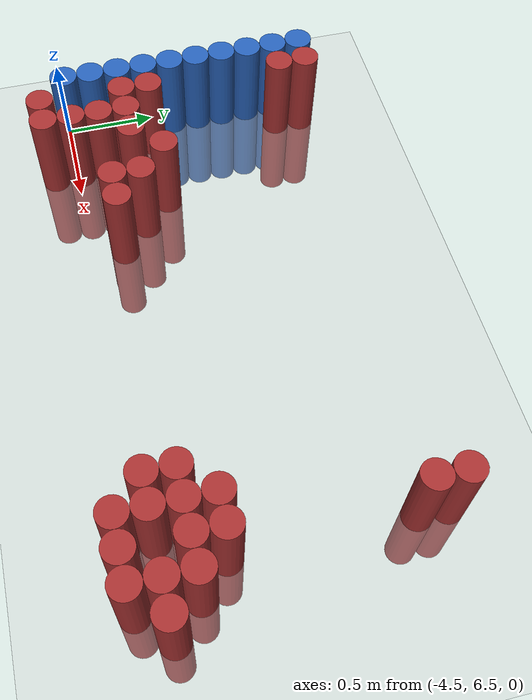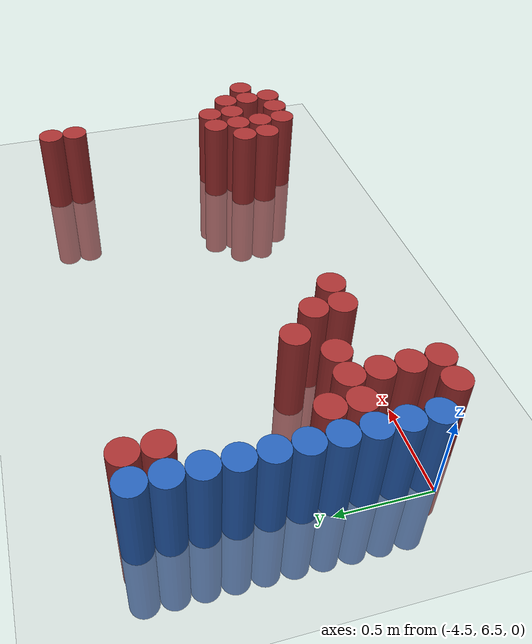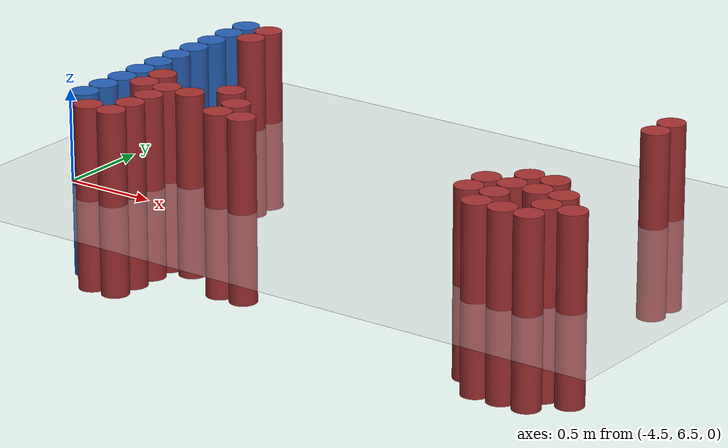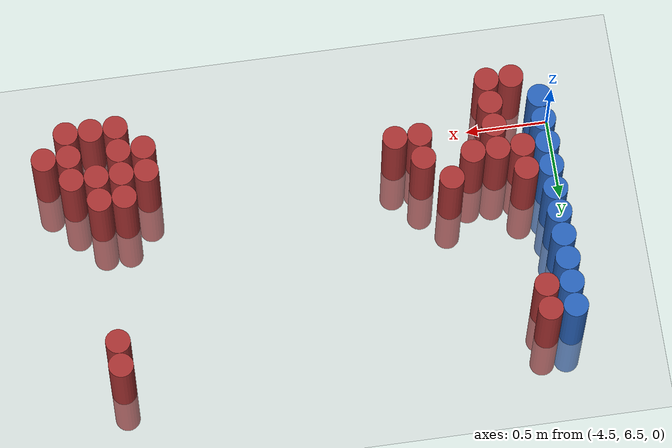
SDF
<sdf version="1.6">
 <world name="default">
  <model name="ground_plane">
   <static>1</static>
   <link name="link">
    <collision name="collision">
     <geometry><plane><normal>0 0 1</normal><size>100 100</size></plane></geometry>
     <surface><friction><ode><mu>100</mu><mu2>50</mu2></ode></friction></surface>
    </collision>
    <visual name="visual">
     <cast_shadows>0</cast_shadows>
     <geometry><plane><normal>0 0 1</normal><size>100 100</size></plane></geometry>
     <material>
      <script><uri>file://media/materials/scripts/gazebo.material</uri><name>Gazebo/Grey</name></script>
     </material>
    </visual>
   </link>
  </model>
  <model name="unit_cylinder_105">
   <static>1</static>
   <pose>-4.425000 6.525000 0.000000 0.000000 0.000000 0.000000</pose>
   <link name="link">
    <inertial>
     <mass>1</mass>
     <inertia><ixx>0.145833</ixx><ixy>0</ixy><ixz>0</ixz><iyy>0.145833</iyy><iyz>0</iyz><izz>0.125</izz></inertia>
    </inertial>
    <collision name="collision">
     <geometry><cylinder><radius>0.075000</radius><length>1</length></cylinder></geometry>
    </collision>
    <visual name="visual">
     <geometry><cylinder><radius>0.075000</radius><length>1</length></cylinder></geometry>
     <material>
      <ambient>0.152000 0.379000 0.720000 1</ambient>
      <diffuse>0.152000 0.379000 0.720000 1</diffuse>
     </material>
     <material>
      <script><name>Gazebo/Grey</name><uri>file://media/materials/scripts/gazebo.material</uri></script>
     </material>
    </visual>
    <sensor name="sensor_contact" type="contact"><contact><collision>collision</collision></contact></sensor>
   </link>
   <plugin filename="gz-sim-touchplugin-system" name="gz::sim::systems::TouchPlugin">
    <target>robot</target>
    <namespace>robot</namespace>
    <time>0.001</time>
    <enabled>true</enabled>
   </plugin>
  </model>
  <model name="unit_cylinder_106">
   <static>1</static>
   <pose>-4.425000 6.675000 0.000000 0.000000 0.000000 0.000000</pose>
   <link name="link">
    <inertial>
     <mass>1</mass>
     <inertia><ixx>0.145833</ixx><ixy>0</ixy><ixz>0</ixz><iyy>0.145833</iyy><iyz>0</iyz><izz>0.125</izz></inertia>
    </inertial>
    <collision name="collision">
     <geometry><cylinder><radius>0.075000</radius><length>1</length></cylinder></geometry>
    </collision>
    <visual name="visual">
     <geometry><cylinder><radius>0.075000</radius><length>1</length></cylinder></geometry>
     <material>
      <ambient>0.152000 0.379000 0.720000 1</ambient>
      <diffuse>0.152000 0.379000 0.720000 1</diffuse>
     </material>
     <material>
      <script><name>Gazebo/Grey</name><uri>file://media/materials/scripts/gazebo.material</uri></script>
     </material>
    </visual>
    <sensor name="sensor_contact" type="contact"><contact><collision>collision</collision></contact></sensor>
   </link>
   <plugin filename="gz-sim-touchplugin-system" name="gz::sim::systems::TouchPlugin">
    <target>robot</target>
    <namespace>robot</namespace>
    <time>0.001</time>
    <enabled>true</enabled>
   </plugin>
  </model>
  <model name="unit_cylinder_107">
   <static>1</static>
   <pose>-4.425000 6.825000 0.000000 0.000000 0.000000 0.000000</pose>
   <link name="link">
    <inertial>
     <mass>1</mass>
     <inertia><ixx>0.145833</ixx><ixy>0</ixy><ixz>0</ixz><iyy>0.145833</iyy><iyz>0</iyz><izz>0.125</izz></inertia>
    </inertial>
    <collision name="collision">
     <geometry><cylinder><radius>0.075000</radius><length>1</length></cylinder></geometry>
    </collision>
    <visual name="visual">
     <geometry><cylinder><radius>0.075000</radius><length>1</length></cylinder></geometry>
     <material>
      <ambient>0.152000 0.379000 0.720000 1</ambient>
      <diffuse>0.152000 0.379000 0.720000 1</diffuse>
     </material>
     <material>
      <script><name>Gazebo/Grey</name><uri>file://media/materials/scripts/gazebo.material</uri></script>
     </material>
    </visual>
    <sensor name="sensor_contact" type="contact"><contact><collision>collision</collision></contact></sensor>
   </link>
   <plugin filename="gz-sim-touchplugin-system" name="gz::sim::systems::TouchPlugin">
    <target>robot</target>
    <namespace>robot</namespace>
    <time>0.001</time>
    <enabled>true</enabled>
   </plugin>
  </model>
  <model name="unit_cylinder_108">
   <static>1</static>
   <pose>-4.425000 6.975000 0.000000 0.000000 0.000000 0.000000</pose>
   <link name="link">
    <inertial>
     <mass>1</mass>
     <inertia><ixx>0.145833</ixx><ixy>0</ixy><ixz>0</ixz><iyy>0.145833</iyy><iyz>0</iyz><izz>0.125</izz></inertia>
    </inertial>
    <collision name="collision">
     <geometry><cylinder><radius>0.075000</radius><length>1</length></cylinder></geometry>
    </collision>
    <visual name="visual">
     <geometry><cylinder><radius>0.075000</radius><length>1</length></cylinder></geometry>
     <material>
      <ambient>0.152000 0.379000 0.720000 1</ambient>
      <diffuse>0.152000 0.379000 0.720000 1</diffuse>
     </material>
     <material>
      <script><name>Gazebo/Grey</name><uri>file://media/materials/scripts/gazebo.material</uri></script>
     </material>
    </visual>
    <sensor name="sensor_contact" type="contact"><contact><collision>collision</collision></contact></sensor>
   </link>
   <plugin filename="gz-sim-touchplugin-system" name="gz::sim::systems::TouchPlugin">
    <target>robot</target>
    <namespace>robot</namespace>
    <time>0.001</time>
    <enabled>true</enabled>
   </plugin>
  </model>
  <model name="unit_cylinder_109">
   <static>1</static>
   <pose>-4.425000 7.125000 0.000000 0.000000 0.000000 0.000000</pose>
   <link name="link">
    <inertial>
     <mass>1</mass>
     <inertia><ixx>0.145833</ixx><ixy>0</ixy><ixz>0</ixz><iyy>0.145833</iyy><iyz>0</iyz><izz>0.125</izz></inertia>
    </inertial>
    <collision name="collision">
     <geometry><cylinder><radius>0.075000</radius><length>1</length></cylinder></geometry>
    </collision>
    <visual name="visual">
     <geometry><cylinder><radius>0.075000</radius><length>1</length></cylinder></geometry>
     <material>
      <ambient>0.152000 0.379000 0.720000 1</ambient>
      <diffuse>0.152000 0.379000 0.720000 1</diffuse>
     </material>
     <material>
      <script><name>Gazebo/Grey</name><uri>file://media/materials/scripts/gazebo.material</uri></script>
     </material>
    </visual>
    <sensor name="sensor_contact" type="contact"><contact><collision>collision</collision></contact></sensor>
   </link>
   <plugin filename="gz-sim-touchplugin-system" name="gz::sim::systems::TouchPlugin">
    <target>robot</target>
    <namespace>robot</namespace>
    <time>0.001</time>
    <enabled>true</enabled>
   </plugin>
  </model>
  <model name="unit_cylinder_110">
   <static>1</static>
   <pose>-4.425000 7.275000 0.000000 0.000000 0.000000 0.000000</pose>
   <link name="link">
    <inertial>
     <mass>1</mass>
     <inertia><ixx>0.145833</ixx><ixy>0</ixy><ixz>0</ixz><iyy>0.145833</iyy><iyz>0</iyz><izz>0.125</izz></inertia>
    </inertial>
    <collision name="collision">
     <geometry><cylinder><radius>0.075000</radius><length>1</length></cylinder></geometry>
    </collision>
    <visual name="visual">
     <geometry><cylinder><radius>0.075000</radius><length>1</length></cylinder></geometry>
     <material>
      <ambient>0.152000 0.379000 0.720000 1</ambient>
      <diffuse>0.152000 0.379000 0.720000 1</diffuse>
     </material>
     <material>
      <script><name>Gazebo/Grey</name><uri>file://media/materials/scripts/gazebo.material</uri></script>
     </material>
    </visual>
    <sensor name="sensor_contact" type="contact"><contact><collision>collision</collision></contact></sensor>
   </link>
   <plugin filename="gz-sim-touchplugin-system" name="gz::sim::systems::TouchPlugin">
    <target>robot</target>
    <namespace>robot</namespace>
    <time>0.001</time>
    <enabled>true</enabled>
   </plugin>
  </model>
  <model name="unit_cylinder_111">
   <static>1</static>
   <pose>-4.425000 7.425000 0.000000 0.000000 0.000000 0.000000</pose>
   <link name="link">
    <inertial>
     <mass>1</mass>
     <inertia><ixx>0.145833</ixx><ixy>0</ixy><ixz>0</ixz><iyy>0.145833</iyy><iyz>0</iyz><izz>0.125</izz></inertia>
    </inertial>
    <collision name="collision">
     <geometry><cylinder><radius>0.075000</radius><length>1</length></cylinder></geometry>
    </collision>
    <visual name="visual">
     <geometry><cylinder><radius>0.075000</radius><length>1</length></cylinder></geometry>
     <material>
      <ambient>0.152000 0.379000 0.720000 1</ambient>
      <diffuse>0.152000 0.379000 0.720000 1</diffuse>
     </material>
     <material>
      <script><name>Gazebo/Grey</name><uri>file://media/materials/scripts/gazebo.material</uri></script>
     </material>
    </visual>
    <sensor name="sensor_contact" type="contact"><contact><collision>collision</collision></contact></sensor>
   </link>
   <plugin filename="gz-sim-touchplugin-system" name="gz::sim::systems::TouchPlugin">
    <target>robot</target>
    <namespace>robot</namespace>
    <time>0.001</time>
    <enabled>true</enabled>
   </plugin>
  </model>
  <model name="unit_cylinder_112">
   <static>1</static>
   <pose>-4.425000 7.575000 0.000000 0.000000 0.000000 0.000000</pose>
   <link name="link">
    <inertial>
     <mass>1</mass>
     <inertia><ixx>0.145833</ixx><ixy>0</ixy><ixz>0</ixz><iyy>0.145833</iyy><iyz>0</iyz><izz>0.125</izz></inertia>
    </inertial>
    <collision name="collision">
     <geometry><cylinder><radius>0.075000</radius><length>1</length></cylinder></geometry>
    </collision>
    <visual name="visual">
     <geometry><cylinder><radius>0.075000</radius><length>1</length></cylinder></geometry>
     <material>
      <ambient>0.152000 0.379000 0.720000 1</ambient>
      <diffuse>0.152000 0.379000 0.720000 1</diffuse>
     </material>
     <material>
      <script><name>Gazebo/Grey</name><uri>file://media/materials/scripts/gazebo.material</uri></script>
     </material>
    </visual>
    <sensor name="sensor_contact" type="contact"><contact><collision>collision</collision></contact></sensor>
   </link>
   <plugin filename="gz-sim-touchplugin-system" name="gz::sim::systems::TouchPlugin">
    <target>robot</target>
    <namespace>robot</namespace>
    <time>0.001</time>
    <enabled>true</enabled>
   </plugin>
  </model>
  <model name="unit_cylinder_113">
   <static>1</static>
   <pose>-4.425000 7.725000 0.000000 0.000000 0.000000 0.000000</pose>
   <link name="link">
    <inertial>
     <mass>1</mass>
     <inertia><ixx>0.145833</ixx><ixy>0</ixy><ixz>0</ixz><iyy>0.145833</iyy><iyz>0</iyz><izz>0.125</izz></inertia>
    </inertial>
    <collision name="collision">
     <geometry><cylinder><radius>0.075000</radius><length>1</length></cylinder></geometry>
    </collision>
    <visual name="visual">
     <geometry><cylinder><radius>0.075000</radius><length>1</length></cylinder></geometry>
     <material>
      <ambient>0.152000 0.379000 0.720000 1</ambient>
      <diffuse>0.152000 0.379000 0.720000 1</diffuse>
     </material>
     <material>
      <script><name>Gazebo/Grey</name><uri>file://media/materials/scripts/gazebo.material</uri></script>
     </material>
    </visual>
    <sensor name="sensor_contact" type="contact"><contact><collision>collision</collision></contact></sensor>
   </link>
   <plugin filename="gz-sim-touchplugin-system" name="gz::sim::systems::TouchPlugin">
    <target>robot</target>
    <namespace>robot</namespace>
    <time>0.001</time>
    <enabled>true</enabled>
   </plugin>
  </model>
  <model name="unit_cylinder_114">
   <static>1</static>
   <pose>-4.425000 7.875000 0.000000 0.000000 0.000000 0.000000</pose>
   <link name="link">
    <inertial>
     <mass>1</mass>
     <inertia><ixx>0.145833</ixx><ixy>0</ixy><ixz>0</ixz><iyy>0.145833</iyy><iyz>0</iyz><izz>0.125</izz></inertia>
    </inertial>
    <collision name="collision">
     <geometry><cylinder><radius>0.075000</radius><length>1</length></cylinder></geometry>
    </collision>
    <visual name="visual">
     <geometry><cylinder><radius>0.075000</radius><length>1</length></cylinder></geometry>
     <material>
      <ambient>0.152000 0.379000 0.720000 1</ambient>
      <diffuse>0.152000 0.379000 0.720000 1</diffuse>
     </material>
     <material>
      <script><name>Gazebo/Grey</name><uri>file://media/materials/scripts/gazebo.material</uri></script>
     </material>
    </visual>
    <sensor name="sensor_contact" type="contact"><contact><collision>collision</collision></contact></sensor>
   </link>
   <plugin filename="gz-sim-touchplugin-system" name="gz::sim::systems::TouchPlugin">
    <target>robot</target>
    <namespace>robot</namespace>
    <time>0.001</time>
    <enabled>true</enabled>
   </plugin>
  </model>
  <model name="unit_cylinder_131">
   <static>1</static>
   <pose>-4.275000 6.375000 0.000000 0.000000 0.000000 0.000000</pose>
   <link name="link">
    <inertial>
     <mass>1</mass>
     <inertia><ixx>0.145833</ixx><ixy>0</ixy><ixz>0</ixz><iyy>0.145833</iyy><iyz>0</iyz><izz>0.125</izz></inertia>
    </inertial>
    <collision name="collision">
     <geometry><cylinder><radius>0.075000</radius><length>1</length></cylinder></geometry>
    </collision>
    <visual name="visual">
     <geometry><cylinder><radius>0.075000</radius><length>1</length></cylinder></geometry>
     <material>
      <ambient>0.648000 0.192000 0.192000 1</ambient>
      <diffuse>0.648000 0.192000 0.192000 1</diffuse>
     </material>
     <material>
      <script><name>Gazebo/Grey</name><uri>file://media/materials/scripts/gazebo.material</uri></script>
     </material>
    </visual>
    <sensor name="sensor_contact" type="contact"><contact><collision>collision</collision></contact></sensor>
   </link>
   <plugin filename="gz-sim-touchplugin-system" name="gz::sim::systems::TouchPlugin">
    <target>robot</target>
    <namespace>robot</namespace>
    <time>0.001</time>
    <enabled>true</enabled>
   </plugin>
  </model>
  <model name="unit_cylinder_132">
   <static>1</static>
   <pose>-4.275000 6.825000 0.000000 0.000000 0.000000 0.000000</pose>
   <link name="link">
    <inertial>
     <mass>1</mass>
     <inertia><ixx>0.145833</ixx><ixy>0</ixy><ixz>0</ixz><iyy>0.145833</iyy><iyz>0</iyz><izz>0.125</izz></inertia>
    </inertial>
    <collision name="collision">
     <geometry><cylinder><radius>0.075000</radius><length>1</length></cylinder></geometry>
    </collision>
    <visual name="visual">
     <geometry><cylinder><radius>0.075000</radius><length>1</length></cylinder></geometry>
     <material>
      <ambient>0.648000 0.192000 0.192000 1</ambient>
      <diffuse>0.648000 0.192000 0.192000 1</diffuse>
     </material>
     <material>
      <script><name>Gazebo/Grey</name><uri>file://media/materials/scripts/gazebo.material</uri></script>
     </material>
    </visual>
    <sensor name="sensor_contact" type="contact"><contact><collision>collision</collision></contact></sensor>
   </link>
   <plugin filename="gz-sim-touchplugin-system" name="gz::sim::systems::TouchPlugin">
    <target>robot</target>
    <namespace>robot</namespace>
    <time>0.001</time>
    <enabled>true</enabled>
   </plugin>
  </model>
  <model name="unit_cylinder_133">
   <static>1</static>
   <pose>-4.275000 6.975000 0.000000 0.000000 0.000000 0.000000</pose>
   <link name="link">
    <inertial>
     <mass>1</mass>
     <inertia><ixx>0.145833</ixx><ixy>0</ixy><ixz>0</ixz><iyy>0.145833</iyy><iyz>0</iyz><izz>0.125</izz></inertia>
    </inertial>
    <collision name="collision">
     <geometry><cylinder><radius>0.075000</radius><length>1</length></cylinder></geometry>
    </collision>
    <visual name="visual">
     <geometry><cylinder><radius>0.075000</radius><length>1</length></cylinder></geometry>
     <material>
      <ambient>0.648000 0.192000 0.192000 1</ambient>
      <diffuse>0.648000 0.192000 0.192000 1</diffuse>
     </material>
     <material>
      <script><name>Gazebo/Grey</name><uri>file://media/materials/scripts/gazebo.material</uri></script>
     </material>
    </visual>
    <sensor name="sensor_contact" type="contact"><contact><collision>collision</collision></contact></sensor>
   </link>
   <plugin filename="gz-sim-touchplugin-system" name="gz::sim::systems::TouchPlugin">
    <target>robot</target>
    <namespace>robot</namespace>
    <time>0.001</time>
    <enabled>true</enabled>
   </plugin>
  </model>
  <model name="unit_cylinder_134">
   <static>1</static>
   <pose>-4.275000 7.725000 0.000000 0.000000 0.000000 0.000000</pose>
   <link name="link">
    <inertial>
     <mass>1</mass>
     <inertia><ixx>0.145833</ixx><ixy>0</ixy><ixz>0</ixz><iyy>0.145833</iyy><iyz>0</iyz><izz>0.125</izz></inertia>
    </inertial>
    <collision name="collision">
     <geometry><cylinder><radius>0.075000</radius><length>1</length></cylinder></geometry>
    </collision>
    <visual name="visual">
     <geometry><cylinder><radius>0.075000</radius><length>1</length></cylinder></geometry>
     <material>
      <ambient>0.648000 0.192000 0.192000 1</ambient>
      <diffuse>0.648000 0.192000 0.192000 1</diffuse>
     </material>
     <material>
      <script><name>Gazebo/Grey</name><uri>file://media/materials/scripts/gazebo.material</uri></script>
     </material>
    </visual>
    <sensor name="sensor_contact" type="contact"><contact><collision>collision</collision></contact></sensor>
   </link>
   <plugin filename="gz-sim-touchplugin-system" name="gz::sim::systems::TouchPlugin">
    <target>robot</target>
    <namespace>robot</namespace>
    <time>0.001</time>
    <enabled>true</enabled>
   </plugin>
  </model>
  <model name="unit_cylinder_135">
   <static>1</static>
   <pose>-4.275000 7.875000 0.000000 0.000000 0.000000 0.000000</pose>
   <link name="link">
    <inertial>
     <mass>1</mass>
     <inertia><ixx>0.145833</ixx><ixy>0</ixy><ixz>0</ixz><iyy>0.145833</iyy><iyz>0</iyz><izz>0.125</izz></inertia>
    </inertial>
    <collision name="collision">
     <geometry><cylinder><radius>0.075000</radius><length>1</length></cylinder></geometry>
    </collision>
    <visual name="visual">
     <geometry><cylinder><radius>0.075000</radius><length>1</length></cylinder></geometry>
     <material>
      <ambient>0.648000 0.192000 0.192000 1</ambient>
      <diffuse>0.648000 0.192000 0.192000 1</diffuse>
     </material>
     <material>
      <script><name>Gazebo/Grey</name><uri>file://media/materials/scripts/gazebo.material</uri></script>
     </material>
    </visual>
    <sensor name="sensor_contact" type="contact"><contact><collision>collision</collision></contact></sensor>
   </link>
   <plugin filename="gz-sim-touchplugin-system" name="gz::sim::systems::TouchPlugin">
    <target>robot</target>
    <namespace>robot</namespace>
    <time>0.001</time>
    <enabled>true</enabled>
   </plugin>
  </model>
  <model name="unit_cylinder_146">
   <static>1</static>
   <pose>-4.125000 6.375000 0.000000 0.000000 0.000000 0.000000</pose>
   <link name="link">
    <inertial>
     <mass>1</mass>
     <inertia><ixx>0.145833</ixx><ixy>0</ixy><ixz>0</ixz><iyy>0.145833</iyy><iyz>0</iyz><izz>0.125</izz></inertia>
    </inertial>
    <collision name="collision">
     <geometry><cylinder><radius>0.075000</radius><length>1</length></cylinder></geometry>
    </collision>
    <visual name="visual">
     <geometry><cylinder><radius>0.075000</radius><length>1</length></cylinder></geometry>
     <material>
      <ambient>0.648000 0.192000 0.192000 1</ambient>
      <diffuse>0.648000 0.192000 0.192000 1</diffuse>
     </material>
     <material>
      <script><name>Gazebo/Grey</name><uri>file://media/materials/scripts/gazebo.material</uri></script>
     </material>
    </visual>
    <sensor name="sensor_contact" type="contact"><contact><collision>collision</collision></contact></sensor>
   </link>
   <plugin filename="gz-sim-touchplugin-system" name="gz::sim::systems::TouchPlugin">
    <target>robot</target>
    <namespace>robot</namespace>
    <time>0.001</time>
    <enabled>true</enabled>
   </plugin>
  </model>
  <model name="unit_cylinder_147">
   <static>1</static>
   <pose>-4.125000 6.525000 0.000000 0.000000 0.000000 0.000000</pose>
   <link name="link">
    <inertial>
     <mass>1</mass>
     <inertia><ixx>0.145833</ixx><ixy>0</ixy><ixz>0</ixz><iyy>0.145833</iyy><iyz>0</iyz><izz>0.125</izz></inertia>
    </inertial>
    <collision name="collision">
     <geometry><cylinder><radius>0.075000</radius><length>1</length></cylinder></geometry>
    </collision>
    <visual name="visual">
     <geometry><cylinder><radius>0.075000</radius><length>1</length></cylinder></geometry>
     <material>
      <ambient>0.648000 0.192000 0.192000 1</ambient>
      <diffuse>0.648000 0.192000 0.192000 1</diffuse>
     </material>
     <material>
      <script><name>Gazebo/Grey</name><uri>file://media/materials/scripts/gazebo.material</uri></script>
     </material>
    </visual>
    <sensor name="sensor_contact" type="contact"><contact><collision>collision</collision></contact></sensor>
   </link>
   <plugin filename="gz-sim-touchplugin-system" name="gz::sim::systems::TouchPlugin">
    <target>robot</target>
    <namespace>robot</namespace>
    <time>0.001</time>
    <enabled>true</enabled>
   </plugin>
  </model>
  <model name="unit_cylinder_148">
   <static>1</static>
   <pose>-4.125000 6.675000 0.000000 0.000000 0.000000 0.000000</pose>
   <link name="link">
    <inertial>
     <mass>1</mass>
     <inertia><ixx>0.145833</ixx><ixy>0</ixy><ixz>0</ixz><iyy>0.145833</iyy><iyz>0</iyz><izz>0.125</izz></inertia>
    </inertial>
    <collision name="collision">
     <geometry><cylinder><radius>0.075000</radius><length>1</length></cylinder></geometry>
    </collision>
    <visual name="visual">
     <geometry><cylinder><radius>0.075000</radius><length>1</length></cylinder></geometry>
     <material>
      <ambient>0.648000 0.192000 0.192000 1</ambient>
      <diffuse>0.648000 0.192000 0.192000 1</diffuse>
     </material>
     <material>
      <script><name>Gazebo/Grey</name><uri>file://media/materials/scripts/gazebo.material</uri></script>
     </material>
    </visual>
    <sensor name="sensor_contact" type="contact"><contact><collision>collision</collision></contact></sensor>
   </link>
   <plugin filename="gz-sim-touchplugin-system" name="gz::sim::systems::TouchPlugin">
    <target>robot</target>
    <namespace>robot</namespace>
    <time>0.001</time>
    <enabled>true</enabled>
   </plugin>
  </model>
  <model name="unit_cylinder_149">
   <static>1</static>
   <pose>-4.125000 6.825000 0.000000 0.000000 0.000000 0.000000</pose>
   <link name="link">
    <inertial>
     <mass>1</mass>
     <inertia><ixx>0.145833</ixx><ixy>0</ixy><ixz>0</ixz><iyy>0.145833</iyy><iyz>0</iyz><izz>0.125</izz></inertia>
    </inertial>
    <collision name="collision">
     <geometry><cylinder><radius>0.075000</radius><length>1</length></cylinder></geometry>
    </collision>
    <visual name="visual">
     <geometry><cylinder><radius>0.075000</radius><length>1</length></cylinder></geometry>
     <material>
      <ambient>0.648000 0.192000 0.192000 1</ambient>
      <diffuse>0.648000 0.192000 0.192000 1</diffuse>
     </material>
     <material>
      <script><name>Gazebo/Grey</name><uri>file://media/materials/scripts/gazebo.material</uri></script>
     </material>
    </visual>
    <sensor name="sensor_contact" type="contact"><contact><collision>collision</collision></contact></sensor>
   </link>
   <plugin filename="gz-sim-touchplugin-system" name="gz::sim::systems::TouchPlugin">
    <target>robot</target>
    <namespace>robot</namespace>
    <time>0.001</time>
    <enabled>true</enabled>
   </plugin>
  </model>
  <model name="unit_cylinder_157">
   <static>1</static>
   <pose>-3.975000 6.825000 0.000000 0.000000 0.000000 0.000000</pose>
   <link name="link">
    <inertial>
     <mass>1</mass>
     <inertia><ixx>0.145833</ixx><ixy>0</ixy><ixz>0</ixz><iyy>0.145833</iyy><iyz>0</iyz><izz>0.125</izz></inertia>
    </inertial>
    <collision name="collision">
     <geometry><cylinder><radius>0.075000</radius><length>1</length></cylinder></geometry>
    </collision>
    <visual name="visual">
     <geometry><cylinder><radius>0.075000</radius><length>1</length></cylinder></geometry>
     <material>
      <ambient>0.648000 0.192000 0.192000 1</ambient>
      <diffuse>0.648000 0.192000 0.192000 1</diffuse>
     </material>
     <material>
      <script><name>Gazebo/Grey</name><uri>file://media/materials/scripts/gazebo.material</uri></script>
     </material>
    </visual>
    <sensor name="sensor_contact" type="contact"><contact><collision>collision</collision></contact></sensor>
   </link>
   <plugin filename="gz-sim-touchplugin-system" name="gz::sim::systems::TouchPlugin">
    <target>robot</target>
    <namespace>robot</namespace>
    <time>0.001</time>
    <enabled>true</enabled>
   </plugin>
  </model>
  <model name="unit_cylinder_162">
   <static>1</static>
   <pose>-3.825000 6.975000 0.000000 0.000000 0.000000 0.000000</pose>
   <link name="link">
    <inertial>
     <mass>1</mass>
     <inertia><ixx>0.145833</ixx><ixy>0</ixy><ixz>0</ixz><iyy>0.145833</iyy><iyz>0</iyz><izz>0.125</izz></inertia>
    </inertial>
    <collision name="collision">
     <geometry><cylinder><radius>0.075000</radius><length>1</length></cylinder></geometry>
    </collision>
    <visual name="visual">
     <geometry><cylinder><radius>0.075000</radius><length>1</length></cylinder></geometry>
     <material>
      <ambient>0.648000 0.192000 0.192000 1</ambient>
      <diffuse>0.648000 0.192000 0.192000 1</diffuse>
     </material>
     <material>
      <script><name>Gazebo/Grey</name><uri>file://media/materials/scripts/gazebo.material</uri></script>
     </material>
    </visual>
    <sensor name="sensor_contact" type="contact"><contact><collision>collision</collision></contact></sensor>
   </link>
   <plugin filename="gz-sim-touchplugin-system" name="gz::sim::systems::TouchPlugin">
    <target>robot</target>
    <namespace>robot</namespace>
    <time>0.001</time>
    <enabled>true</enabled>
   </plugin>
  </model>
  <model name="unit_cylinder_163">
   <static>1</static>
   <pose>-3.675000 6.675000 0.000000 0.000000 0.000000 0.000000</pose>
   <link name="link">
    <inertial>
     <mass>1</mass>
     <inertia><ixx>0.145833</ixx><ixy>0</ixy><ixz>0</ixz><iyy>0.145833</iyy><iyz>0</iyz><izz>0.125</izz></inertia>
    </inertial>
    <collision name="collision">
     <geometry><cylinder><radius>0.075000</radius><length>1</length></cylinder></geometry>
    </collision>
    <visual name="visual">
     <geometry><cylinder><radius>0.075000</radius><length>1</length></cylinder></geometry>
     <material>
      <ambient>0.648000 0.192000 0.192000 1</ambient>
      <diffuse>0.648000 0.192000 0.192000 1</diffuse>
     </material>
     <material>
      <script><name>Gazebo/Grey</name><uri>file://media/materials/scripts/gazebo.material</uri></script>
     </material>
    </visual>
    <sensor name="sensor_contact" type="contact"><contact><collision>collision</collision></contact></sensor>
   </link>
   <plugin filename="gz-sim-touchplugin-system" name="gz::sim::systems::TouchPlugin">
    <target>robot</target>
    <namespace>robot</namespace>
    <time>0.001</time>
    <enabled>true</enabled>
   </plugin>
  </model>
  <model name="unit_cylinder_164">
   <static>1</static>
   <pose>-3.675000 6.825000 0.000000 0.000000 0.000000 0.000000</pose>
   <link name="link">
    <inertial>
     <mass>1</mass>
     <inertia><ixx>0.145833</ixx><ixy>0</ixy><ixz>0</ixz><iyy>0.145833</iyy><iyz>0</iyz><izz>0.125</izz></inertia>
    </inertial>
    <collision name="collision">
     <geometry><cylinder><radius>0.075000</radius><length>1</length></cylinder></geometry>
    </collision>
    <visual name="visual">
     <geometry><cylinder><radius>0.075000</radius><length>1</length></cylinder></geometry>
     <material>
      <ambient>0.648000 0.192000 0.192000 1</ambient>
      <diffuse>0.648000 0.192000 0.192000 1</diffuse>
     </material>
     <material>
      <script><name>Gazebo/Grey</name><uri>file://media/materials/scripts/gazebo.material</uri></script>
     </material>
    </visual>
    <sensor name="sensor_contact" type="contact"><contact><collision>collision</collision></contact></sensor>
   </link>
   <plugin filename="gz-sim-touchplugin-system" name="gz::sim::systems::TouchPlugin">
    <target>robot</target>
    <namespace>robot</namespace>
    <time>0.001</time>
    <enabled>true</enabled>
   </plugin>
  </model>
  <model name="unit_cylinder_165">
   <static>1</static>
   <pose>-3.525000 6.675000 0.000000 0.000000 0.000000 0.000000</pose>
   <link name="link">
    <inertial>
     <mass>1</mass>
     <inertia><ixx>0.145833</ixx><ixy>0</ixy><ixz>0</ixz><iyy>0.145833</iyy><iyz>0</iyz><izz>0.125</izz></inertia>
    </inertial>
    <collision name="collision">
     <geometry><cylinder><radius>0.075000</radius><length>1</length></cylinder></geometry>
    </collision>
    <visual name="visual">
     <geometry><cylinder><radius>0.075000</radius><length>1</length></cylinder></geometry>
     <material>
      <ambient>0.648000 0.192000 0.192000 1</ambient>
      <diffuse>0.648000 0.192000 0.192000 1</diffuse>
     </material>
     <material>
      <script><name>Gazebo/Grey</name><uri>file://media/materials/scripts/gazebo.material</uri></script>
     </material>
    </visual>
    <sensor name="sensor_contact" type="contact"><contact><collision>collision</collision></contact></sensor>
   </link>
   <plugin filename="gz-sim-touchplugin-system" name="gz::sim::systems::TouchPlugin">
    <target>robot</target>
    <namespace>robot</namespace>
    <time>0.001</time>
    <enabled>true</enabled>
   </plugin>
  </model>
  <model name="unit_cylinder_172">
   <static>1</static>
   <pose>-2.025000 6.525000 0.000000 0.000000 0.000000 0.000000</pose>
   <link name="link">
    <inertial>
     <mass>1</mass>
     <inertia><ixx>0.145833</ixx><ixy>0</ixy><ixz>0</ixz><iyy>0.145833</iyy><iyz>0</iyz><izz>0.125</izz></inertia>
    </inertial>
    <collision name="collision">
     <geometry><cylinder><radius>0.075000</radius><length>1</length></cylinder></geometry>
    </collision>
    <visual name="visual">
     <geometry><cylinder><radius>0.075000</radius><length>1</length></cylinder></geometry>
     <material>
      <ambient>0.648000 0.192000 0.192000 1</ambient>
      <diffuse>0.648000 0.192000 0.192000 1</diffuse>
     </material>
     <material>
      <script><name>Gazebo/Grey</name><uri>file://media/materials/scripts/gazebo.material</uri></script>
     </material>
    </visual>
    <sensor name="sensor_contact" type="contact"><contact><collision>collision</collision></contact></sensor>
   </link>
   <plugin filename="gz-sim-touchplugin-system" name="gz::sim::systems::TouchPlugin">
    <target>robot</target>
    <namespace>robot</namespace>
    <time>0.001</time>
    <enabled>true</enabled>
   </plugin>
  </model>
  <model name="unit_cylinder_173">
   <static>1</static>
   <pose>-2.025000 6.675000 0.000000 0.000000 0.000000 0.000000</pose>
   <link name="link">
    <inertial>
     <mass>1</mass>
     <inertia><ixx>0.145833</ixx><ixy>0</ixy><ixz>0</ixz><iyy>0.145833</iyy><iyz>0</iyz><izz>0.125</izz></inertia>
    </inertial>
    <collision name="collision">
     <geometry><cylinder><radius>0.075000</radius><length>1</length></cylinder></geometry>
    </collision>
    <visual name="visual">
     <geometry><cylinder><radius>0.075000</radius><length>1</length></cylinder></geometry>
     <material>
      <ambient>0.648000 0.192000 0.192000 1</ambient>
      <diffuse>0.648000 0.192000 0.192000 1</diffuse>
     </material>
     <material>
      <script><name>Gazebo/Grey</name><uri>file://media/materials/scripts/gazebo.material</uri></script>
     </material>
    </visual>
    <sensor name="sensor_contact" type="contact"><contact><collision>collision</collision></contact></sensor>
   </link>
   <plugin filename="gz-sim-touchplugin-system" name="gz::sim::systems::TouchPlugin">
    <target>robot</target>
    <namespace>robot</namespace>
    <time>0.001</time>
    <enabled>true</enabled>
   </plugin>
  </model>
  <model name="unit_cylinder_183">
   <static>1</static>
   <pose>-1.875000 6.375000 0.000000 0.000000 0.000000 0.000000</pose>
   <link name="link">
    <inertial>
     <mass>1</mass>
     <inertia><ixx>0.145833</ixx><ixy>0</ixy><ixz>0</ixz><iyy>0.145833</iyy><iyz>0</iyz><izz>0.125</izz></inertia>
    </inertial>
    <collision name="collision">
     <geometry><cylinder><radius>0.075000</radius><length>1</length></cylinder></geometry>
    </collision>
    <visual name="visual">
     <geometry><cylinder><radius>0.075000</radius><length>1</length></cylinder></geometry>
     <material>
      <ambient>0.648000 0.192000 0.192000 1</ambient>
      <diffuse>0.648000 0.192000 0.192000 1</diffuse>
     </material>
     <material>
      <script><name>Gazebo/Grey</name><uri>file://media/materials/scripts/gazebo.material</uri></script>
     </material>
    </visual>
    <sensor name="sensor_contact" type="contact"><contact><collision>collision</collision></contact></sensor>
   </link>
   <plugin filename="gz-sim-touchplugin-system" name="gz::sim::systems::TouchPlugin">
    <target>robot</target>
    <namespace>robot</namespace>
    <time>0.001</time>
    <enabled>true</enabled>
   </plugin>
  </model>
  <model name="unit_cylinder_184">
   <static>1</static>
   <pose>-1.875000 6.525000 0.000000 0.000000 0.000000 0.000000</pose>
   <link name="link">
    <inertial>
     <mass>1</mass>
     <inertia><ixx>0.145833</ixx><ixy>0</ixy><ixz>0</ixz><iyy>0.145833</iyy><iyz>0</iyz><izz>0.125</izz></inertia>
    </inertial>
    <collision name="collision">
     <geometry><cylinder><radius>0.075000</radius><length>1</length></cylinder></geometry>
    </collision>
    <visual name="visual">
     <geometry><cylinder><radius>0.075000</radius><length>1</length></cylinder></geometry>
     <material>
      <ambient>0.648000 0.192000 0.192000 1</ambient>
      <diffuse>0.648000 0.192000 0.192000 1</diffuse>
     </material>
     <material>
      <script><name>Gazebo/Grey</name><uri>file://media/materials/scripts/gazebo.material</uri></script>
     </material>
    </visual>
    <sensor name="sensor_contact" type="contact"><contact><collision>collision</collision></contact></sensor>
   </link>
   <plugin filename="gz-sim-touchplugin-system" name="gz::sim::systems::TouchPlugin">
    <target>robot</target>
    <namespace>robot</namespace>
    <time>0.001</time>
    <enabled>true</enabled>
   </plugin>
  </model>
  <model name="unit_cylinder_185">
   <static>1</static>
   <pose>-1.875000 6.675000 0.000000 0.000000 0.000000 0.000000</pose>
   <link name="link">
    <inertial>
     <mass>1</mass>
     <inertia><ixx>0.145833</ixx><ixy>0</ixy><ixz>0</ixz><iyy>0.145833</iyy><iyz>0</iyz><izz>0.125</izz></inertia>
    </inertial>
    <collision name="collision">
     <geometry><cylinder><radius>0.075000</radius><length>1</length></cylinder></geometry>
    </collision>
    <visual name="visual">
     <geometry><cylinder><radius>0.075000</radius><length>1</length></cylinder></geometry>
     <material>
      <ambient>0.648000 0.192000 0.192000 1</ambient>
      <diffuse>0.648000 0.192000 0.192000 1</diffuse>
     </material>
     <material>
      <script><name>Gazebo/Grey</name><uri>file://media/materials/scripts/gazebo.material</uri></script>
     </material>
    </visual>
    <sensor name="sensor_contact" type="contact"><contact><collision>collision</collision></contact></sensor>
   </link>
   <plugin filename="gz-sim-touchplugin-system" name="gz::sim::systems::TouchPlugin">
    <target>robot</target>
    <namespace>robot</namespace>
    <time>0.001</time>
    <enabled>true</enabled>
   </plugin>
  </model>
  <model name="unit_cylinder_186">
   <static>1</static>
   <pose>-1.875000 6.825000 0.000000 0.000000 0.000000 0.000000</pose>
   <link name="link">
    <inertial>
     <mass>1</mass>
     <inertia><ixx>0.145833</ixx><ixy>0</ixy><ixz>0</ixz><iyy>0.145833</iyy><iyz>0</iyz><izz>0.125</izz></inertia>
    </inertial>
    <collision name="collision">
     <geometry><cylinder><radius>0.075000</radius><length>1</length></cylinder></geometry>
    </collision>
    <visual name="visual">
     <geometry><cylinder><radius>0.075000</radius><length>1</length></cylinder></geometry>
     <material>
      <ambient>0.648000 0.192000 0.192000 1</ambient>
      <diffuse>0.648000 0.192000 0.192000 1</diffuse>
     </material>
     <material>
      <script><name>Gazebo/Grey</name><uri>file://media/materials/scripts/gazebo.material</uri></script>
     </material>
    </visual>
    <sensor name="sensor_contact" type="contact"><contact><collision>collision</collision></contact></sensor>
   </link>
   <plugin filename="gz-sim-touchplugin-system" name="gz::sim::systems::TouchPlugin">
    <target>robot</target>
    <namespace>robot</namespace>
    <time>0.001</time>
    <enabled>true</enabled>
   </plugin>
  </model>
  <model name="unit_cylinder_197">
   <static>1</static>
   <pose>-1.725000 6.375000 0.000000 0.000000 0.000000 0.000000</pose>
   <link name="link">
    <inertial>
     <mass>1</mass>
     <inertia><ixx>0.145833</ixx><ixy>0</ixy><ixz>0</ixz><iyy>0.145833</iyy><iyz>0</iyz><izz>0.125</izz></inertia>
    </inertial>
    <collision name="collision">
     <geometry><cylinder><radius>0.075000</radius><length>1</length></cylinder></geometry>
    </collision>
    <visual name="visual">
     <geometry><cylinder><radius>0.075000</radius><length>1</length></cylinder></geometry>
     <material>
      <ambient>0.648000 0.192000 0.192000 1</ambient>
      <diffuse>0.648000 0.192000 0.192000 1</diffuse>
     </material>
     <material>
      <script><name>Gazebo/Grey</name><uri>file://media/materials/scripts/gazebo.material</uri></script>
     </material>
    </visual>
    <sensor name="sensor_contact" type="contact"><contact><collision>collision</collision></contact></sensor>
   </link>
   <plugin filename="gz-sim-touchplugin-system" name="gz::sim::systems::TouchPlugin">
    <target>robot</target>
    <namespace>robot</namespace>
    <time>0.001</time>
    <enabled>true</enabled>
   </plugin>
  </model>
  <model name="unit_cylinder_198">
   <static>1</static>
   <pose>-1.725000 6.675000 0.000000 0.000000 0.000000 0.000000</pose>
   <link name="link">
    <inertial>
     <mass>1</mass>
     <inertia><ixx>0.145833</ixx><ixy>0</ixy><ixz>0</ixz><iyy>0.145833</iyy><iyz>0</iyz><izz>0.125</izz></inertia>
    </inertial>
    <collision name="collision">
     <geometry><cylinder><radius>0.075000</radius><length>1</length></cylinder></geometry>
    </collision>
    <visual name="visual">
     <geometry><cylinder><radius>0.075000</radius><length>1</length></cylinder></geometry>
     <material>
      <ambient>0.648000 0.192000 0.192000 1</ambient>
      <diffuse>0.648000 0.192000 0.192000 1</diffuse>
     </material>
     <material>
      <script><name>Gazebo/Grey</name><uri>file://media/materials/scripts/gazebo.material</uri></script>
     </material>
    </visual>
    <sensor name="sensor_contact" type="contact"><contact><collision>collision</collision></contact></sensor>
   </link>
   <plugin filename="gz-sim-touchplugin-system" name="gz::sim::systems::TouchPlugin">
    <target>robot</target>
    <namespace>robot</namespace>
    <time>0.001</time>
    <enabled>true</enabled>
   </plugin>
  </model>
  <model name="unit_cylinder_199">
   <static>1</static>
   <pose>-1.725000 6.825000 0.000000 0.000000 0.000000 0.000000</pose>
   <link name="link">
    <inertial>
     <mass>1</mass>
     <inertia><ixx>0.145833</ixx><ixy>0</ixy><ixz>0</ixz><iyy>0.145833</iyy><iyz>0</iyz><izz>0.125</izz></inertia>
    </inertial>
    <collision name="collision">
     <geometry><cylinder><radius>0.075000</radius><length>1</length></cylinder></geometry>
    </collision>
    <visual name="visual">
     <geometry><cylinder><radius>0.075000</radius><length>1</length></cylinder></geometry>
     <material>
      <ambient>0.648000 0.192000 0.192000 1</ambient>
      <diffuse>0.648000 0.192000 0.192000 1</diffuse>
     </material>
     <material>
      <script><name>Gazebo/Grey</name><uri>file://media/materials/scripts/gazebo.material</uri></script>
     </material>
    </visual>
    <sensor name="sensor_contact" type="contact"><contact><collision>collision</collision></contact></sensor>
   </link>
   <plugin filename="gz-sim-touchplugin-system" name="gz::sim::systems::TouchPlugin">
    <target>robot</target>
    <namespace>robot</namespace>
    <time>0.001</time>
    <enabled>true</enabled>
   </plugin>
  </model>
  <model name="unit_cylinder_200">
   <static>1</static>
   <pose>-1.725000 7.725000 0.000000 0.000000 0.000000 0.000000</pose>
   <link name="link">
    <inertial>
     <mass>1</mass>
     <inertia><ixx>0.145833</ixx><ixy>0</ixy><ixz>0</ixz><iyy>0.145833</iyy><iyz>0</iyz><izz>0.125</izz></inertia>
    </inertial>
    <collision name="collision">
     <geometry><cylinder><radius>0.075000</radius><length>1</length></cylinder></geometry>
    </collision>
    <visual name="visual">
     <geometry><cylinder><radius>0.075000</radius><length>1</length></cylinder></geometry>
     <material>
      <ambient>0.648000 0.192000 0.192000 1</ambient>
      <diffuse>0.648000 0.192000 0.192000 1</diffuse>
     </material>
     <material>
      <script><name>Gazebo/Grey</name><uri>file://media/materials/scripts/gazebo.material</uri></script>
     </material>
    </visual>
    <sensor name="sensor_contact" type="contact"><contact><collision>collision</collision></contact></sensor>
   </link>
   <plugin filename="gz-sim-touchplugin-system" name="gz::sim::systems::TouchPlugin">
    <target>robot</target>
    <namespace>robot</namespace>
    <time>0.001</time>
    <enabled>true</enabled>
   </plugin>
  </model>
  <model name="unit_cylinder_201">
   <static>1</static>
   <pose>-1.725000 7.875000 0.000000 0.000000 0.000000 0.000000</pose>
   <link name="link">
    <inertial>
     <mass>1</mass>
     <inertia><ixx>0.145833</ixx><ixy>0</ixy><ixz>0</ixz><iyy>0.145833</iyy><iyz>0</iyz><izz>0.125</izz></inertia>
    </inertial>
    <collision name="collision">
     <geometry><cylinder><radius>0.075000</radius><length>1</length></cylinder></geometry>
    </collision>
    <visual name="visual">
     <geometry><cylinder><radius>0.075000</radius><length>1</length></cylinder></geometry>
     <material>
      <ambient>0.648000 0.192000 0.192000 1</ambient>
      <diffuse>0.648000 0.192000 0.192000 1</diffuse>
     </material>
     <material>
      <script><name>Gazebo/Grey</name><uri>file://media/materials/scripts/gazebo.material</uri></script>
     </material>
    </visual>
    <sensor name="sensor_contact" type="contact"><contact><collision>collision</collision></contact></sensor>
   </link>
   <plugin filename="gz-sim-touchplugin-system" name="gz::sim::systems::TouchPlugin">
    <target>robot</target>
    <namespace>robot</namespace>
    <time>0.001</time>
    <enabled>true</enabled>
   </plugin>
  </model>
  <model name="unit_cylinder_207">
   <static>1</static>
   <pose>-1.575000 6.375000 0.000000 0.000000 0.000000 0.000000</pose>
   <link name="link">
    <inertial>
     <mass>1</mass>
     <inertia><ixx>0.145833</ixx><ixy>0</ixy><ixz>0</ixz><iyy>0.145833</iyy><iyz>0</iyz><izz>0.125</izz></inertia>
    </inertial>
    <collision name="collision">
     <geometry><cylinder><radius>0.075000</radius><length>1</length></cylinder></geometry>
    </collision>
    <visual name="visual">
     <geometry><cylinder><radius>0.075000</radius><length>1</length></cylinder></geometry>
     <material>
      <ambient>0.648000 0.192000 0.192000 1</ambient>
      <diffuse>0.648000 0.192000 0.192000 1</diffuse>
     </material>
     <material>
      <script><name>Gazebo/Grey</name><uri>file://media/materials/scripts/gazebo.material</uri></script>
     </material>
    </visual>
    <sensor name="sensor_contact" type="contact"><contact><collision>collision</collision></contact></sensor>
   </link>
   <plugin filename="gz-sim-touchplugin-system" name="gz::sim::systems::TouchPlugin">
    <target>robot</target>
    <namespace>robot</namespace>
    <time>0.001</time>
    <enabled>true</enabled>
   </plugin>
  </model>
  <model name="unit_cylinder_208">
   <static>1</static>
   <pose>-1.575000 6.525000 0.000000 0.000000 0.000000 0.000000</pose>
   <link name="link">
    <inertial>
     <mass>1</mass>
     <inertia><ixx>0.145833</ixx><ixy>0</ixy><ixz>0</ixz><iyy>0.145833</iyy><iyz>0</iyz><izz>0.125</izz></inertia>
    </inertial>
    <collision name="collision">
     <geometry><cylinder><radius>0.075000</radius><length>1</length></cylinder></geometry>
    </collision>
    <visual name="visual">
     <geometry><cylinder><radius>0.075000</radius><length>1</length></cylinder></geometry>
     <material>
      <ambient>0.648000 0.192000 0.192000 1</ambient>
      <diffuse>0.648000 0.192000 0.192000 1</diffuse>
     </material>
     <material>
      <script><name>Gazebo/Grey</name><uri>file://media/materials/scripts/gazebo.material</uri></script>
     </material>
    </visual>
    <sensor name="sensor_contact" type="contact"><contact><collision>collision</collision></contact></sensor>
   </link>
   <plugin filename="gz-sim-touchplugin-system" name="gz::sim::systems::TouchPlugin">
    <target>robot</target>
    <namespace>robot</namespace>
    <time>0.001</time>
    <enabled>true</enabled>
   </plugin>
  </model>
  <model name="unit_cylinder_209">
   <static>1</static>
   <pose>-1.575000 6.675000 0.000000 0.000000 0.000000 0.000000</pose>
   <link name="link">
    <inertial>
     <mass>1</mass>
     <inertia><ixx>0.145833</ixx><ixy>0</ixy><ixz>0</ixz><iyy>0.145833</iyy><iyz>0</iyz><izz>0.125</izz></inertia>
    </inertial>
    <collision name="collision">
     <geometry><cylinder><radius>0.075000</radius><length>1</length></cylinder></geometry>
    </collision>
    <visual name="visual">
     <geometry><cylinder><radius>0.075000</radius><length>1</length></cylinder></geometry>
     <material>
      <ambient>0.648000 0.192000 0.192000 1</ambient>
      <diffuse>0.648000 0.192000 0.192000 1</diffuse>
     </material>
     <material>
      <script><name>Gazebo/Grey</name><uri>file://media/materials/scripts/gazebo.material</uri></script>
     </material>
    </visual>
    <sensor name="sensor_contact" type="contact"><contact><collision>collision</collision></contact></sensor>
   </link>
   <plugin filename="gz-sim-touchplugin-system" name="gz::sim::systems::TouchPlugin">
    <target>robot</target>
    <namespace>robot</namespace>
    <time>0.001</time>
    <enabled>true</enabled>
   </plugin>
  </model>
  <model name="unit_cylinder_215">
   <static>1</static>
   <pose>-1.425000 6.525000 0.000000 0.000000 0.000000 0.000000</pose>
   <link name="link">
    <inertial>
     <mass>1</mass>
     <inertia><ixx>0.145833</ixx><ixy>0</ixy><ixz>0</ixz><iyy>0.145833</iyy><iyz>0</iyz><izz>0.125</izz></inertia>
    </inertial>
    <collision name="collision">
     <geometry><cylinder><radius>0.075000</radius><length>1</length></cylinder></geometry>
    </collision>
    <visual name="visual">
     <geometry><cylinder><radius>0.075000</radius><length>1</length></cylinder></geometry>
     <material>
      <ambient>0.648000 0.192000 0.192000 1</ambient>
      <diffuse>0.648000 0.192000 0.192000 1</diffuse>
     </material>
     <material>
      <script><name>Gazebo/Grey</name><uri>file://media/materials/scripts/gazebo.material</uri></script>
     </material>
    </visual>
    <sensor name="sensor_contact" type="contact"><contact><collision>collision</collision></contact></sensor>
   </link>
   <plugin filename="gz-sim-touchplugin-system" name="gz::sim::systems::TouchPlugin">
    <target>robot</target>
    <namespace>robot</namespace>
    <time>0.001</time>
    <enabled>true</enabled>
   </plugin>
  </model>
 </world>
</sdf>
